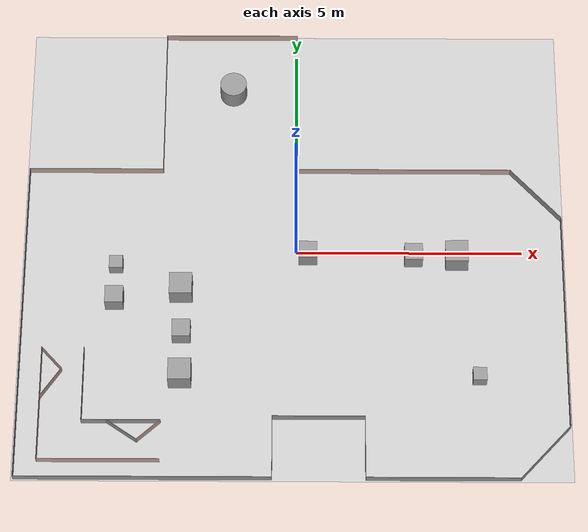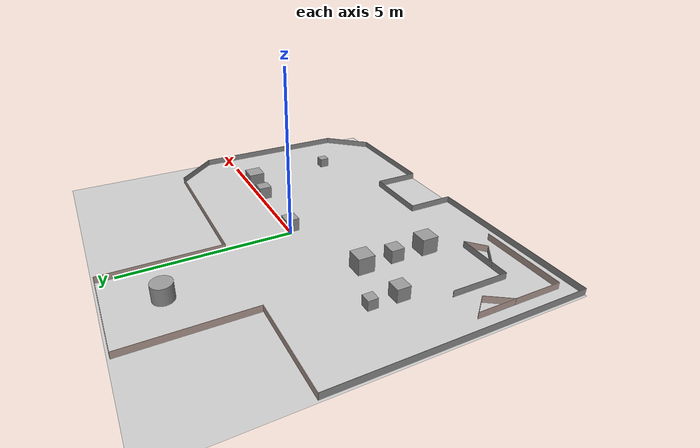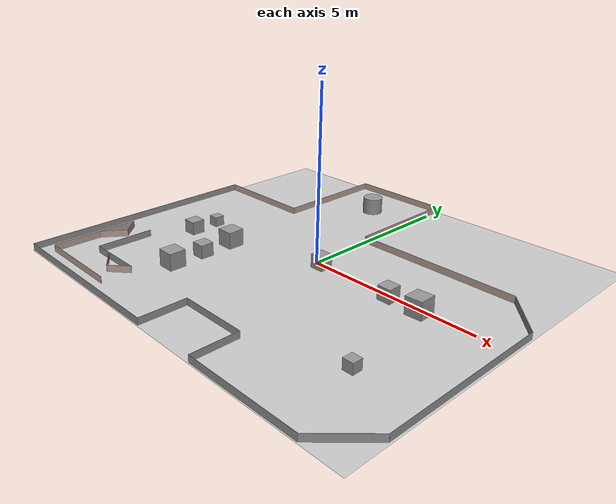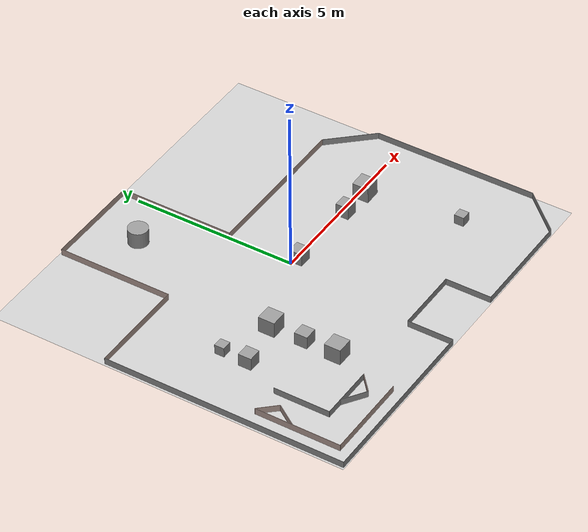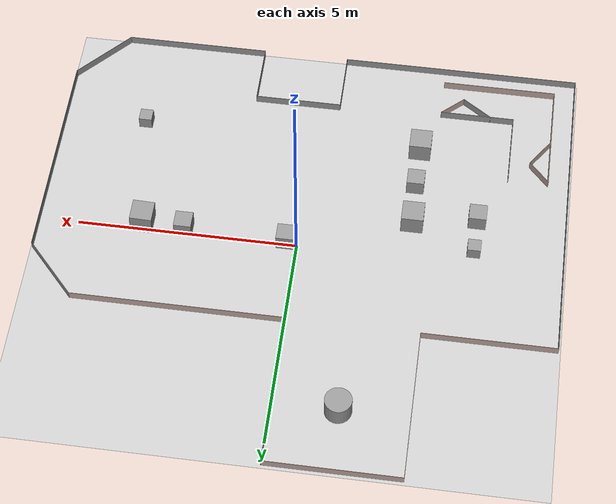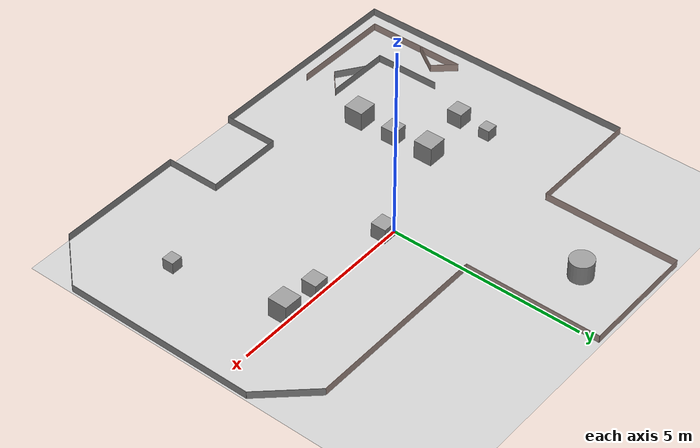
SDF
<sdf version="1.5">
 <world name="default">
  <light name="sun" type="directional">
   <pose>0 0 10 0 -0 0</pose>
   <diffuse>0.8 0.8 0.8 1</diffuse>
   <specular>0.2 0.2 0.2 1</specular>
   <attenuation>
    <range>1000</range>
    <constant>0.9</constant>
    <linear>0.01</linear>
    <quadratic>0.001</quadratic>
   </attenuation>
   <direction>-0.5 0.1 -0.9</direction>
   <spot><inner_angle>0</inner_angle><outer_angle>0</outer_angle><falloff>0</falloff></spot>
  </light>
  <gravity>0 0 -9.8</gravity>
  <magnetic_field>6e-06 2.3e-05 -4.2e-05</magnetic_field>
  <atmosphere type="adiabatic"/>
  <physics type="ode">
   <max_step_size>0.01</max_step_size>
   <real_time_factor>1</real_time_factor>
   <real_time_update_rate>100</real_time_update_rate>
  </physics>
  <scene><ambient>0.4 0.4 0.4 1</ambient><background>0.7 0.7 0.7 1</background><shadows>1</shadows></scene>
  <spherical_coordinates>
   <surface_model>EARTH_WGS84</surface_model>
   <latitude_deg>0</latitude_deg>
   <longitude_deg>0</longitude_deg>
   <elevation>0</elevation>
   <heading_deg>0</heading_deg>
  </spherical_coordinates>
  <model name="KS_Track">
   <static>1</static>
   <link name="link">
    <collision name="collision">
     <geometry><plane><normal>0 0 1</normal><size>12 11</size></plane></geometry>
     <surface><friction><ode><mu>100</mu><mu2>50</mu2></ode></friction></surface>
    </collision>
    <visual name="visual">
     <cast_shadows>0</cast_shadows>
     <geometry><plane><normal>0 0 1</normal><size>12 11</size></plane></geometry>
     <material>
      <script>
       <uri>model://KS_Track_Model/materials/scripts</uri>
       <uri>model://KS_Track_Model/materials/textures/</uri>
       <name>KS_Track/Image</name>
      </script>
     </material>
    </visual>
   </link>
   <pose>-0.055071 0.072909 0 0 -0 0</pose>
  </model>
  <model name="MR_wall">
   <pose>-0.04897 0.04897 0 0 -0 0</pose>
   <link name="Wall_0">
    <collision name="Wall_0_Collision">
     <geometry><box><size>4.81 0.01 0.2</size></box></geometry>
     <pose>0 0 0.1 0 -0 0</pose>
    </collision>
    <visual name="Wall_0_Visual">
     <pose>0 0 0.1 0 -0 0</pose>
     <geometry><box><size>4.81 0.01 0.2</size></box></geometry>
     <material>
      <script><uri>file://media/materials/scripts/gazebo.material</uri><name>Gazebo/Grey</name></script>
      <ambient>0.760784 0.662745 0.627451 1</ambient>
     </material>
     <meta><layer>0</layer></meta>
    </visual>
    <pose>2.44897 1.95103 0 0 -0 0</pose>
   </link>
   <link name="Wall_10">
    <collision name="Wall_10_Collision">
     <geometry><box><size>7.41 0.01 0.2</size></box></geometry>
     <pose>0 0 0.1 0 -0 0</pose>
    </collision>
    <visual name="Wall_10_Visual">
     <pose>0 0 0.1 0 -0 0</pose>
     <geometry><box><size>7.41 0.01 0.2</size></box></geometry>
     <material>
      <script><uri>file://media/materials/scripts/gazebo.material</uri><name>Gazebo/Grey</name></script>
      <ambient>1 1 1 1</ambient>
     </material>
     <meta><layer>0</layer></meta>
    </visual>
    <pose>-5.95103 -1.74897 0 0 -0 -1.5708</pose>
   </link>
   <link name="Wall_12">
    <collision name="Wall_12_Collision">
     <geometry><box><size>5.51 0.01 0.2</size></box></geometry>
     <pose>0 0 0.1 0 -0 0</pose>
    </collision>
    <visual name="Wall_12_Visual">
     <pose>0 0 0.1 0 -0 0</pose>
     <geometry><box><size>5.51 0.01 0.2</size></box></geometry>
     <material>
      <script><uri>file://media/materials/scripts/gazebo.material</uri><name>Gazebo/Grey</name></script>
      <ambient>1 1 1 1</ambient>
     </material>
     <meta><layer>0</layer></meta>
    </visual>
    <pose>-3.20103 -5.44897 0 0 -0 0</pose>
   </link>
   <link name="Wall_13">
    <collision name="Wall_13_Collision">
     <geometry><box><size>1.41 0.01 0.2</size></box></geometry>
     <pose>0 0 0.1 0 -0 0</pose>
    </collision>
    <visual name="Wall_13_Visual">
     <pose>0 0 0.1 0 -0 0</pose>
     <geometry><box><size>1.41 0.01 0.2</size></box></geometry>
     <material>
      <script><uri>file://media/materials/scripts/gazebo.material</uri><name>Gazebo/Grey</name></script>
      <ambient>1 1 1 1</ambient>
     </material>
     <meta><layer>0</layer></meta>
    </visual>
    <pose>-0.451032 -4.74897 0 0 -0 1.5708</pose>
   </link>
   <link name="Wall_14">
    <collision name="Wall_14_Collision">
     <geometry><box><size>2.01 0.01 0.2</size></box></geometry>
     <pose>0 0 0.1 0 -0 0</pose>
    </collision>
    <visual name="Wall_14_Visual">
     <pose>0 0 0.1 0 -0 0</pose>
     <geometry><box><size>2.01 0.01 0.2</size></box></geometry>
     <material>
      <script><uri>file://media/materials/scripts/gazebo.material</uri><name>Gazebo/Grey</name></script>
      <ambient>1 1 1 1</ambient>
     </material>
     <meta><layer>0</layer></meta>
    </visual>
    <pose>0.548968 -4.04897 0 0 -0 0</pose>
   </link>
   <link name="Wall_16">
    <collision name="Wall_16_Collision">
     <geometry><box><size>1.41 0.01 0.2</size></box></geometry>
     <pose>0 0 0.1 0 -0 0</pose>
    </collision>
    <visual name="Wall_16_Visual">
     <pose>0 0 0.1 0 -0 0</pose>
     <geometry><box><size>1.41 0.01 0.2</size></box></geometry>
     <material>
      <script><uri>file://media/materials/scripts/gazebo.material</uri><name>Gazebo/Grey</name></script>
      <ambient>1 1 1 1</ambient>
     </material>
     <meta><layer>0</layer></meta>
    </visual>
    <pose>1.54897 -4.74897 0 0 -0 -1.5708</pose>
   </link>
   <link name="Wall_18">
    <collision name="Wall_18_Collision">
     <geometry><box><size>3.31 0.01 0.2</size></box></geometry>
     <pose>0 0 0.1 0 -0 0</pose>
    </collision>
    <visual name="Wall_18_Visual">
     <pose>0 0 0.1 0 -0 0</pose>
     <geometry><box><size>3.31 0.01 0.2</size></box></geometry>
     <material>
      <script><uri>file://media/materials/scripts/gazebo.material</uri><name>Gazebo/Grey</name></script>
      <ambient>1 1 1 1</ambient>
     </material>
     <meta><layer>0</layer></meta>
    </visual>
    <pose>3.19897 -5.44897 0 0 -0 0</pose>
   </link>
   <link name="Wall_2">
    <collision name="Wall_2_Collision">
     <geometry><box><size>3.51 0.01 0.2</size></box></geometry>
     <pose>0 0 0.1 0 -0 0</pose>
    </collision>
    <visual name="Wall_2_Visual">
     <pose>0 0 0.1 0 -0 0</pose>
     <geometry><box><size>3.51 0.01 0.2</size></box></geometry>
     <material>
      <script><uri>file://media/materials/scripts/gazebo.material</uri><name>Gazebo/Grey</name></script>
      <ambient>0.760784 0.662745 0.627451 1</ambient>
     </material>
     <meta><layer>0</layer></meta>
    </visual>
    <pose>0.048968 3.70103 0 0 -0 1.5708</pose>
   </link>
   <link name="Wall_23">
    <collision name="Wall_23_Collision">
     <geometry><box><size>1.63788 0.01 0.2</size></box></geometry>
     <pose>0 0 0.1 0 -0 0</pose>
    </collision>
    <visual name="Wall_23_Visual">
     <pose>0 0 0.1 0 -0 0</pose>
     <geometry><box><size>1.63788 0.01 0.2</size></box></geometry>
     <material>
      <script><uri>file://media/materials/scripts/gazebo.material</uri><name>Gazebo/Grey</name></script>
      <ambient>1 1 1 1</ambient>
     </material>
     <meta><layer>0</layer></meta>
    </visual>
    <pose>5.39897 1.35103 0 0 -0 -0.828849</pose>
   </link>
   <link name="Wall_25">
    <collision name="Wall_25_Collision">
     <geometry><box><size>1.63788 0.01 0.2</size></box></geometry>
     <pose>0 0 0.1 0 -0 0</pose>
    </collision>
    <visual name="Wall_25_Visual">
     <pose>0 0 0.1 0 -0 0</pose>
     <geometry><box><size>1.63788 0.01 0.2</size></box></geometry>
     <material>
      <script><uri>file://media/materials/scripts/gazebo.material</uri><name>Gazebo/Grey</name></script>
      <ambient>1 1 1 1</ambient>
     </material>
     <meta><layer>0</layer></meta>
    </visual>
    <pose>5.39897 -4.84897 0 0 -0 0.828849</pose>
   </link>
   <link name="Wall_27">
    <collision name="Wall_27_Collision">
     <geometry><box><size>5.01 0.01 0.2</size></box></geometry>
     <pose>0 0 0.1 0 -0 0</pose>
    </collision>
    <visual name="Wall_27_Visual">
     <pose>0 0 0.1 0 -0 0</pose>
     <geometry><box><size>5.01 0.01 0.2</size></box></geometry>
     <material>
      <script><uri>file://media/materials/scripts/gazebo.material</uri><name>Gazebo/Grey</name></script>
      <ambient>1 1 1 1</ambient>
     </material>
     <meta><layer>0</layer></meta>
    </visual>
    <pose>5.94897 -1.74897 0 0 -0 -1.5708</pose>
   </link>
   <link name="Wall_29">
    <collision name="Wall_29_Collision">
     <geometry><box><size>1.71 0.01 0.2</size></box></geometry>
     <pose>0 0 0.1 0 -0 0</pose>
    </collision>
    <visual name="Wall_29_Visual">
     <pose>0 0 0.1 0 -0 0</pose>
     <geometry><box><size>1.71 0.01 0.2</size></box></geometry>
     <material>
      <script><uri>file://media/materials/scripts/gazebo.material</uri><name>Gazebo/Grey</name></script>
      <ambient>1 1 1 1</ambient>
     </material>
     <meta><layer>0</layer></meta>
    </visual>
    <pose>-4.55103 -3.29897 0 0 -0 -1.5708</pose>
   </link>
   <link name="Wall_31">
    <collision name="Wall_31_Collision">
     <geometry><box><size>1.71002 0.01 0.2</size></box></geometry>
     <pose>0 0 0.1 0 -0 0</pose>
    </collision>
    <visual name="Wall_31_Visual">
     <pose>0 0 0.1 0 -0 0</pose>
     <geometry><box><size>1.71002 0.01 0.2</size></box></geometry>
     <material>
      <script><uri>file://media/materials/scripts/gazebo.material</uri><name>Gazebo/Grey</name></script>
      <ambient>1 1 1 1</ambient>
     </material>
     <meta><layer>0</layer></meta>
    </visual>
    <pose>-3.70103 -4.14897 0 0 -0 0</pose>
   </link>
   <link name="Wall_33">
    <collision name="Wall_33_Collision">
     <geometry><box><size>2.61 0.01 0.2</size></box></geometry>
     <pose>0 0 0.1 0 -0 0</pose>
    </collision>
    <visual name="Wall_33_Visual">
     <pose>0 0 0.1 0 -0 0</pose>
     <geometry><box><size>2.61 0.01 0.2</size></box></geometry>
     <material>
      <script><uri>file://media/materials/scripts/gazebo.material</uri><name>Gazebo/Grey</name></script>
      <ambient>0.760784 0.662745 0.627451 1</ambient>
     </material>
     <meta><layer>0</layer></meta>
    </visual>
    <pose>-5.47103 -3.74897 0 0 -0 -1.5708</pose>
   </link>
   <link name="Wall_35">
    <collision name="Wall_35_Collision">
     <geometry><box><size>2.63 0.01 0.2</size></box></geometry>
     <pose>0 0 0.1 0 -0 0</pose>
    </collision>
    <visual name="Wall_35_Visual">
     <pose>0 0 0.1 0 -0 0</pose>
     <geometry><box><size>2.63 0.01 0.2</size></box></geometry>
     <material>
      <script><uri>file://media/materials/scripts/gazebo.material</uri><name>Gazebo/Grey</name></script>
      <ambient>0.760784 0.662745 0.627451 1</ambient>
     </material>
     <meta><layer>0</layer></meta>
    </visual>
    <pose>-4.16103 -5.04897 0 0 -0 3.14159</pose>
   </link>
   <link name="Wall_37">
    <collision name="Wall_37_Collision">
     <geometry><box><size>0.682681 0.01 0.2</size></box></geometry>
     <pose>0 0 0.1 0 -0 0</pose>
    </collision>
    <visual name="Wall_37_Visual">
     <pose>0 0 0.1 0 -0 0</pose>
     <geometry><box><size>0.682681 0.01 0.2</size></box></geometry>
     <material>
      <script><uri>file://media/materials/scripts/gazebo.material</uri><name>Gazebo/Grey</name></script>
      <ambient>0.760784 0.662745 0.627451 1</ambient>
     </material>
     <meta><layer>0</layer></meta>
    </visual>
    <pose>-3.10103 -4.37397 0 0 -0 -2.40878</pose>
   </link>
   <link name="Wall_38">
    <collision name="Wall_38_Collision">
     <geometry><box><size>0.809375 0.01 0.2</size></box></geometry>
     <pose>0 0 0.1 0 -0 0</pose>
    </collision>
    <visual name="Wall_38_Visual">
     <pose>0 0 0.1 0 -0 0</pose>
     <geometry><box><size>0.809375 0.01 0.2</size></box></geometry>
     <material>
      <script><uri>file://media/materials/scripts/gazebo.material</uri><name>Gazebo/Grey</name></script>
      <ambient>1 1 1 1</ambient>
     </material>
     <meta><layer>0</layer></meta>
    </visual>
    <pose>-3.68103 -4.37347 0 0 -0 2.54214</pose>
   </link>
   <link name="Wall_4">
    <collision name="Wall_4_Collision">
     <geometry><box><size>3.01 0.01 0.2</size></box></geometry>
     <pose>0 0 0.1 0 -0 0</pose>
    </collision>
    <visual name="Wall_4_Visual">
     <pose>0 0 0.1 0 -0 0</pose>
     <geometry><box><size>3.01 0.01 0.2</size></box></geometry>
     <material>
      <script><uri>file://media/materials/scripts/gazebo.material</uri><name>Gazebo/Grey</name></script>
      <ambient>0.760784 0.662745 0.627451 1</ambient>
     </material>
     <meta><layer>0</layer></meta>
    </visual>
    <pose>-1.45103 5.45103 0 0 -0 3.14159</pose>
   </link>
   <link name="Wall_40">
    <collision name="Wall_40_Collision">
     <geometry><box><size>0.678174 0.01 0.2</size></box></geometry>
     <pose>0 0 0.1 0 -0 0</pose>
    </collision>
    <visual name="Wall_40_Visual">
     <pose>0 0 0.1 0 -0 0</pose>
     <geometry><box><size>0.678174 0.01 0.2</size></box></geometry>
     <material>
      <script><uri>file://media/materials/scripts/gazebo.material</uri><name>Gazebo/Grey</name></script>
      <ambient>0.760784 0.662745 0.627451 1</ambient>
     </material>
     <meta><layer>0</layer></meta>
    </visual>
    <pose>-5.24603 -2.69593 0 0 -0 -0.831893</pose>
   </link>
   <link name="Wall_41">
    <collision name="Wall_41_Collision">
     <geometry><box><size>0.809375 0.01 0.2</size></box></geometry>
     <pose>0 0 0.1 0 -0 0</pose>
    </collision>
    <visual name="Wall_41_Visual">
     <pose>0 0 0.1 0 -0 0</pose>
     <geometry><box><size>0.809375 0.01 0.2</size></box></geometry>
     <material>
      <script><uri>file://media/materials/scripts/gazebo.material</uri><name>Gazebo/Grey</name></script>
      <ambient>0.760784 0.662745 0.627451 1</ambient>
     </material>
     <meta><layer>0</layer></meta>
    </visual>
    <pose>-5.24653 -3.27593 0 0 -0 -2.17025</pose>
   </link>
   <link name="Wall_6">
    <collision name="Wall_6_Collision">
     <geometry><box><size>3.51 0.01 0.2</size></box></geometry>
     <pose>0 0 0.1 0 -0 0</pose>
    </collision>
    <visual name="Wall_6_Visual">
     <pose>0 0 0.1 0 -0 0</pose>
     <geometry><box><size>3.51 0.01 0.2</size></box></geometry>
     <material>
      <script><uri>file://media/materials/scripts/gazebo.material</uri><name>Gazebo/Grey</name></script>
      <ambient>0.760784 0.662745 0.627451 1</ambient>
     </material>
     <meta><layer>0</layer></meta>
    </visual>
    <pose>-2.95103 3.70103 0 0 -0 -1.5708</pose>
   </link>
   <link name="Wall_8">
    <collision name="Wall_8_Collision">
     <geometry><box><size>3.01 0.01 0.2</size></box></geometry>
     <pose>0 0 0.1 0 -0 0</pose>
    </collision>
    <visual name="Wall_8_Visual">
     <pose>0 0 0.1 0 -0 0</pose>
     <geometry><box><size>3.01 0.01 0.2</size></box></geometry>
     <material>
      <script><uri>file://media/materials/scripts/gazebo.material</uri><name>Gazebo/Grey</name></script>
      <ambient>0.760784 0.662745 0.627451 1</ambient>
     </material>
     <meta><layer>0</layer></meta>
    </visual>
    <pose>-4.45103 1.95103 0 0 -0 3.14159</pose>
   </link>
   <static>1</static>
  </model>
  <model name="box_5_0">
   <link name="link">
    <inertial>
     <mass>1</mass>
     <inertia>
      <ixx>0.166667</ixx>
      <ixy>0</ixy>
      <ixz>0</ixz>
      <iyy>0.166667</iyy>
      <iyz>0</iyz>
      <izz>0.166667</izz>
     </inertia>
    </inertial>
    <visual name="visual">
     <geometry><box><size>0.5 0.5 0.5</size></box></geometry>
     <material>
      <script><name>Gazebo/Grey</name><uri>file://media/materials/scripts/gazebo.material</uri></script>
      <shader type="pixel"><normal_map>__default__</normal_map></shader>
      <ambient>0.3 0.3 0.3 1</ambient>
      <diffuse>0.7 0.7 0.7 1</diffuse>
      <specular>0.01 0.01 0.01 1</specular>
      <emissive>0 0 0 1</emissive>
     </material>
    </visual>
    <collision name="collision">
     <geometry><box><size>0.5 0.5 0.5</size></box></geometry>
     <surface>
      <friction>
       <ode><mu>1</mu><mu2>1</mu2><fdir1>0 0 0</fdir1><slip1>0</slip1><slip2>0</slip2></ode>
       <torsional>
        <coefficient>1</coefficient>
        <patch_radius>0</patch_radius>
        <surface_radius>0</surface_radius>
        <use_patch_radius>1</use_patch_radius>
        <ode><slip>0</slip></ode>
       </torsional>
      </friction>
      <bounce><restitution_coefficient>0</restitution_coefficient><threshold>1e+06</threshold></bounce>
      <contact>
       <collide_without_contact>0</collide_without_contact>
       <collide_without_contact_bitmask>1</collide_without_contact_bitmask>
       <collide_bitmask>1</collide_bitmask>
       <ode>
        <soft_cfm>0</soft_cfm>
        <soft_erp>0.2</soft_erp>
        <kp>1e+13</kp>
        <kd>1</kd>
        <max_vel>0.01</max_vel>
        <min_depth>0</min_depth>
       </ode>
       <bullet>
        <split_impulse>1</split_impulse>
        <split_impulse_penetration_threshold>-0.01</split_impulse_penetration_threshold>
        <soft_cfm>0</soft_cfm>
        <soft_erp>0.2</soft_erp>
        <kp>1e+13</kp>
        <kd>1</kd>
       </bullet>
      </contact>
     </surface>
    </collision>
   </link>
   <static>0</static>
   <pose>3.54501 -0.181841 0.260401 0 -0.042522 -4e-06</pose>
  </model>
  <model name="unit_4_1">
   <link name="link">
    <inertial>
     <mass>1</mass>
     <inertia>
      <ixx>0.166667</ixx>
      <ixy>0</ixy>
      <ixz>0</ixz>
      <iyy>0.166667</iyy>
      <iyz>0</iyz>
      <izz>0.166667</izz>
     </inertia>
    </inertial>
    <visual name="visual">
     <geometry><box><size>0.4 0.4 0.4</size></box></geometry>
     <material>
      <script><name>Gazebo/Grey</name><uri>file://media/materials/scripts/gazebo.material</uri></script>
      <shader type="pixel"><normal_map>__default__</normal_map></shader>
      <ambient>0.3 0.3 0.3 1</ambient>
      <diffuse>0.7 0.7 0.7 1</diffuse>
      <specular>0.01 0.01 0.01 1</specular>
      <emissive>0 0 0 1</emissive>
     </material>
    </visual>
    <collision name="collision">
     <geometry><box><size>0.4 0.4 0.4</size></box></geometry>
     <surface>
      <friction>
       <ode><mu>1</mu><mu2>1</mu2><fdir1>0 0 0</fdir1><slip1>0</slip1><slip2>0</slip2></ode>
       <torsional>
        <coefficient>1</coefficient>
        <patch_radius>0</patch_radius>
        <surface_radius>0</surface_radius>
        <use_patch_radius>1</use_patch_radius>
        <ode><slip>0</slip></ode>
       </torsional>
      </friction>
      <bounce><restitution_coefficient>0</restitution_coefficient><threshold>1e+06</threshold></bounce>
      <contact>
       <collide_without_contact>0</collide_without_contact>
       <collide_without_contact_bitmask>1</collide_without_contact_bitmask>
       <collide_bitmask>1</collide_bitmask>
       <ode>
        <soft_cfm>0</soft_cfm>
        <soft_erp>0.2</soft_erp>
        <kp>1e+13</kp>
        <kd>1</kd>
        <max_vel>0.01</max_vel>
        <min_depth>0</min_depth>
       </ode>
       <bullet>
        <split_impulse>1</split_impulse>
        <split_impulse_penetration_threshold>-0.01</split_impulse_penetration_threshold>
        <soft_cfm>0</soft_cfm>
        <soft_erp>0.2</soft_erp>
        <kp>1e+13</kp>
        <kd>1</kd>
       </bullet>
      </contact>
     </surface>
    </collision>
   </link>
   <static>0</static>
   <pose>2.595 -0.145 0.2 0 -0 0</pose>
  </model>
  <model name="unit_4">
   <link name="link">
    <inertial>
     <mass>1</mass>
     <inertia>
      <ixx>0.166667</ixx>
      <ixy>0</ixy>
      <ixz>0</ixz>
      <iyy>0.166667</iyy>
      <iyz>0</iyz>
      <izz>0.166667</izz>
     </inertia>
    </inertial>
    <visual name="visual">
     <geometry><box><size>0.4 0.4 0.4</size></box></geometry>
     <material>
      <script><name>Gazebo/Grey</name><uri>file://media/materials/scripts/gazebo.material</uri></script>
      <shader type="pixel"><normal_map>__default__</normal_map></shader>
      <ambient>0.3 0.3 0.3 1</ambient>
      <diffuse>0.7 0.7 0.7 1</diffuse>
      <specular>0.01 0.01 0.01 1</specular>
      <emissive>0 0 0 1</emissive>
     </material>
    </visual>
    <collision name="collision">
     <geometry><box><size>0.4 0.4 0.4</size></box></geometry>
     <surface>
      <friction>
       <ode><mu>1</mu><mu2>1</mu2><fdir1>0 0 0</fdir1><slip1>0</slip1><slip2>0</slip2></ode>
       <torsional>
        <coefficient>1</coefficient>
        <patch_radius>0</patch_radius>
        <surface_radius>0</surface_radius>
        <use_patch_radius>1</use_patch_radius>
        <ode><slip>0</slip></ode>
       </torsional>
      </friction>
      <bounce><restitution_coefficient>0</restitution_coefficient><threshold>1e+06</threshold></bounce>
      <contact>
       <collide_without_contact>0</collide_without_contact>
       <collide_without_contact_bitmask>1</collide_without_contact_bitmask>
       <collide_bitmask>1</collide_bitmask>
       <ode>
        <soft_cfm>0</soft_cfm>
        <soft_erp>0.2</soft_erp>
        <kp>1e+13</kp>
        <kd>1</kd>
        <max_vel>0.01</max_vel>
        <min_depth>0</min_depth>
       </ode>
       <bullet>
        <split_impulse>1</split_impulse>
        <split_impulse_penetration_threshold>-0.01</split_impulse_penetration_threshold>
        <soft_cfm>0</soft_cfm>
        <soft_erp>0.2</soft_erp>
        <kp>1e+13</kp>
        <kd>1</kd>
       </bullet>
      </contact>
     </surface>
    </collision>
   </link>
   <static>0</static>
   <pose>0.260538 -0.10507 0.2 0 -0 0</pose>
  </model>
  <model name="box_3">
   <link name="link">
    <inertial>
     <mass>1</mass>
     <inertia>
      <ixx>0.166667</ixx>
      <ixy>0</ixy>
      <ixz>0</ixz>
      <iyy>0.166667</iyy>
      <iyz>0</iyz>
      <izz>0.166667</izz>
     </inertia>
    </inertial>
    <visual name="visual">
     <geometry><box><size>0.3 0.3 0.3</size></box></geometry>
     <material>
      <script><name>Gazebo/Grey</name><uri>file://media/materials/scripts/gazebo.material</uri></script>
      <shader type="pixel"><normal_map>__default__</normal_map></shader>
      <ambient>0.3 0.3 0.3 1</ambient>
      <diffuse>0.7 0.7 0.7 1</diffuse>
      <specular>0.01 0.01 0.01 1</specular>
      <emissive>0 0 0 1</emissive>
     </material>
    </visual>
    <collision name="collision">
     <geometry><box><size>0.3 0.3 0.3</size></box></geometry>
     <surface>
      <friction>
       <ode><mu>1</mu><mu2>1</mu2><fdir1>0 0 0</fdir1><slip1>0</slip1><slip2>0</slip2></ode>
       <torsional>
        <coefficient>1</coefficient>
        <patch_radius>0</patch_radius>
        <surface_radius>0</surface_radius>
        <use_patch_radius>1</use_patch_radius>
        <ode><slip>0</slip></ode>
       </torsional>
      </friction>
      <bounce><restitution_coefficient>0</restitution_coefficient><threshold>1e+06</threshold></bounce>
      <contact>
       <collide_without_contact>0</collide_without_contact>
       <collide_without_contact_bitmask>1</collide_without_contact_bitmask>
       <collide_bitmask>1</collide_bitmask>
       <ode>
        <soft_cfm>0</soft_cfm>
        <soft_erp>0.2</soft_erp>
        <kp>1e+13</kp>
        <kd>1</kd>
        <max_vel>0.01</max_vel>
        <min_depth>0</min_depth>
       </ode>
       <bullet>
        <split_impulse>1</split_impulse>
        <split_impulse_penetration_threshold>-0.01</split_impulse_penetration_threshold>
        <soft_cfm>0</soft_cfm>
        <soft_erp>0.2</soft_erp>
        <kp>1e+13</kp>
        <kd>1</kd>
       </bullet>
      </contact>
     </surface>
    </collision>
   </link>
   <static>0</static>
   <pose>-3.97489 -0.374778 0.15 0 -0 0</pose>
  </model>
  <model name="unit_4_0">
   <link name="link">
    <inertial>
     <mass>1</mass>
     <inertia>
      <ixx>0.166667</ixx>
      <ixy>0</ixy>
      <ixz>0</ixz>
      <iyy>0.166667</iyy>
      <iyz>0</iyz>
      <izz>0.166667</izz>
     </inertia>
    </inertial>
    <visual name="visual">
     <geometry><box><size>0.4 0.4 0.4</size></box></geometry>
     <material>
      <script><name>Gazebo/Grey</name><uri>file://media/materials/scripts/gazebo.material</uri></script>
      <shader type="pixel"><normal_map>__default__</normal_map></shader>
      <ambient>0.3 0.3 0.3 1</ambient>
      <diffuse>0.7 0.7 0.7 1</diffuse>
      <specular>0.01 0.01 0.01 1</specular>
      <emissive>0 0 0 1</emissive>
     </material>
    </visual>
    <collision name="collision">
     <geometry><box><size>0.4 0.4 0.4</size></box></geometry>
     <surface>
      <friction>
       <ode><mu>1</mu><mu2>1</mu2><fdir1>0 0 0</fdir1><slip1>0</slip1><slip2>0</slip2></ode>
       <torsional>
        <coefficient>1</coefficient>
        <patch_radius>0</patch_radius>
        <surface_radius>0</surface_radius>
        <use_patch_radius>1</use_patch_radius>
        <ode><slip>0</slip></ode>
       </torsional>
      </friction>
      <bounce><restitution_coefficient>0</restitution_coefficient><threshold>1e+06</threshold></bounce>
      <contact>
       <collide_without_contact>0</collide_without_contact>
       <collide_without_contact_bitmask>1</collide_without_contact_bitmask>
       <collide_bitmask>1</collide_bitmask>
       <ode>
        <soft_cfm>0</soft_cfm>
        <soft_erp>0.2</soft_erp>
        <kp>1e+13</kp>
        <kd>1</kd>
        <max_vel>0.01</max_vel>
        <min_depth>0</min_depth>
       </ode>
       <bullet>
        <split_impulse>1</split_impulse>
        <split_impulse_penetration_threshold>-0.01</split_impulse_penetration_threshold>
        <soft_cfm>0</soft_cfm>
        <soft_erp>0.2</soft_erp>
        <kp>1e+13</kp>
        <kd>1</kd>
       </bullet>
      </contact>
     </surface>
    </collision>
   </link>
   <static>0</static>
   <pose>-3.98488 -1.21387 0.2 0 -0 0</pose>
  </model>
  <model name="box_5_1">
   <link name="link">
    <inertial>
     <mass>1</mass>
     <inertia>
      <ixx>0.166667</ixx>
      <ixy>0</ixy>
      <ixz>0</ixz>
      <iyy>0.166667</iyy>
      <iyz>0</iyz>
      <izz>0.166667</izz>
     </inertia>
    </inertial>
    <visual name="visual">
     <geometry><box><size>0.5 0.5 0.5</size></box></geometry>
     <material>
      <script><name>Gazebo/Grey</name><uri>file://media/materials/scripts/gazebo.material</uri></script>
      <shader type="pixel"><normal_map>__default__</normal_map></shader>
      <ambient>0.3 0.3 0.3 1</ambient>
      <diffuse>0.7 0.7 0.7 1</diffuse>
      <specular>0.01 0.01 0.01 1</specular>
      <emissive>0 0 0 1</emissive>
     </material>
    </visual>
    <collision name="collision">
     <geometry><box><size>0.5 0.5 0.5</size></box></geometry>
     <surface>
      <friction>
       <ode><mu>1</mu><mu2>1</mu2><fdir1>0 0 0</fdir1><slip1>0</slip1><slip2>0</slip2></ode>
       <torsional>
        <coefficient>1</coefficient>
        <patch_radius>0</patch_radius>
        <surface_radius>0</surface_radius>
        <use_patch_radius>1</use_patch_radius>
        <ode><slip>0</slip></ode>
       </torsional>
      </friction>
      <bounce><restitution_coefficient>0</restitution_coefficient><threshold>1e+06</threshold></bounce>
      <contact>
       <collide_without_contact>0</collide_without_contact>
       <collide_without_contact_bitmask>1</collide_without_contact_bitmask>
       <collide_bitmask>1</collide_bitmask>
       <ode>
        <soft_cfm>0</soft_cfm>
        <soft_erp>0.2</soft_erp>
        <kp>1e+13</kp>
        <kd>1</kd>
        <max_vel>0.01</max_vel>
        <min_depth>0</min_depth>
       </ode>
       <bullet>
        <split_impulse>1</split_impulse>
        <split_impulse_penetration_threshold>-0.01</split_impulse_penetration_threshold>
        <soft_cfm>0</soft_cfm>
        <soft_erp>0.2</soft_erp>
        <kp>1e+13</kp>
        <kd>1</kd>
       </bullet>
      </contact>
     </surface>
    </collision>
   </link>
   <static>0</static>
   <pose>-2.50648 -3.03191 0.25 0 -0 0</pose>
  </model>
  <model name="unit_4_2">
   <link name="link">
    <inertial>
     <mass>1</mass>
     <inertia>
      <ixx>0.166667</ixx>
      <ixy>0</ixy>
      <ixz>0</ixz>
      <iyy>0.166667</iyy>
      <iyz>0</iyz>
      <izz>0.166667</izz>
     </inertia>
    </inertial>
    <visual name="visual">
     <geometry><box><size>0.4 0.4 0.4</size></box></geometry>
     <material>
      <script><name>Gazebo/Grey</name><uri>file://media/materials/scripts/gazebo.material</uri></script>
      <shader type="pixel"><normal_map>__default__</normal_map></shader>
      <ambient>0.3 0.3 0.3 1</ambient>
      <diffuse>0.7 0.7 0.7 1</diffuse>
      <specular>0.01 0.01 0.01 1</specular>
      <emissive>0 0 0 1</emissive>
     </material>
    </visual>
    <collision name="collision">
     <geometry><box><size>0.4 0.4 0.4</size></box></geometry>
     <surface>
      <friction>
       <ode><mu>1</mu><mu2>1</mu2><fdir1>0 0 0</fdir1><slip1>0</slip1><slip2>0</slip2></ode>
       <torsional>
        <coefficient>1</coefficient>
        <patch_radius>0</patch_radius>
        <surface_radius>0</surface_radius>
        <use_patch_radius>1</use_patch_radius>
        <ode><slip>0</slip></ode>
       </torsional>
      </friction>
      <bounce><restitution_coefficient>0</restitution_coefficient><threshold>1e+06</threshold></bounce>
      <contact>
       <collide_without_contact>0</collide_without_contact>
       <collide_without_contact_bitmask>1</collide_without_contact_bitmask>
       <collide_bitmask>1</collide_bitmask>
       <ode>
        <soft_cfm>0</soft_cfm>
        <soft_erp>0.2</soft_erp>
        <kp>1e+13</kp>
        <kd>1</kd>
        <max_vel>0.01</max_vel>
        <min_depth>0</min_depth>
       </ode>
       <bullet>
        <split_impulse>1</split_impulse>
        <split_impulse_penetration_threshold>-0.01</split_impulse_penetration_threshold>
        <soft_cfm>0</soft_cfm>
        <soft_erp>0.2</soft_erp>
        <kp>1e+13</kp>
        <kd>1</kd>
       </bullet>
      </contact>
     </surface>
    </collision>
   </link>
   <static>0</static>
   <pose>-2.49649 -2.01301 0.2 0 -0 0</pose>
  </model>
  <model name="box_5_2">
   <link name="link">
    <inertial>
     <mass>1</mass>
     <inertia>
      <ixx>0.166667</ixx>
      <ixy>0</ixy>
      <ixz>0</ixz>
      <iyy>0.166667</iyy>
      <iyz>0</iyz>
      <izz>0.166667</izz>
     </inertia>
    </inertial>
    <visual name="visual">
     <geometry><box><size>0.5 0.5 0.5</size></box></geometry>
     <material>
      <script><name>Gazebo/Grey</name><uri>file://media/materials/scripts/gazebo.material</uri></script>
      <shader type="pixel"><normal_map>__default__</normal_map></shader>
      <ambient>0.3 0.3 0.3 1</ambient>
      <diffuse>0.7 0.7 0.7 1</diffuse>
      <specular>0.01 0.01 0.01 1</specular>
      <emissive>0 0 0 1</emissive>
     </material>
    </visual>
    <collision name="collision">
     <geometry><box><size>0.5 0.5 0.5</size></box></geometry>
     <surface>
      <friction>
       <ode><mu>1</mu><mu2>1</mu2><fdir1>0 0 0</fdir1><slip1>0</slip1><slip2>0</slip2></ode>
       <torsional>
        <coefficient>1</coefficient>
        <patch_radius>0</patch_radius>
        <surface_radius>0</surface_radius>
        <use_patch_radius>1</use_patch_radius>
        <ode><slip>0</slip></ode>
       </torsional>
      </friction>
      <bounce><restitution_coefficient>0</restitution_coefficient><threshold>1e+06</threshold></bounce>
      <contact>
       <collide_without_contact>0</collide_without_contact>
       <collide_without_contact_bitmask>1</collide_without_contact_bitmask>
       <collide_bitmask>1</collide_bitmask>
       <ode>
        <soft_cfm>0</soft_cfm>
        <soft_erp>0.2</soft_erp>
        <kp>1e+13</kp>
        <kd>1</kd>
        <max_vel>0.01</max_vel>
        <min_depth>0</min_depth>
       </ode>
       <bullet>
        <split_impulse>1</split_impulse>
        <split_impulse_penetration_threshold>-0.01</split_impulse_penetration_threshold>
        <soft_cfm>0</soft_cfm>
        <soft_erp>0.2</soft_erp>
        <kp>1e+13</kp>
        <kd>1</kd>
       </bullet>
      </contact>
     </surface>
    </collision>
   </link>
   <static>0</static>
   <pose>-2.52645 -0.98412 0.25 0 -0 0</pose>
  </model>
  <model name="cylinder1">
   <link name="link">
    <inertial>
     <mass>1</mass>
     <inertia><ixx>0.145833</ixx><ixy>0</ixy><ixz>0</ixz><iyy>0.145833</iyy><iyz>0</iyz><izz>0.125</izz></inertia>
    </inertial>
    <visual name="visual">
     <geometry><cylinder><radius>0.3</radius><length>0.5</length></cylinder></geometry>
     <material>
      <script><name>Gazebo/Grey</name><uri>file://media/materials/scripts/gazebo.material</uri></script>
      <shader type="pixel"><normal_map>__default__</normal_map></shader>
      <ambient>0.3 0.3 0.3 1</ambient>
      <diffuse>0.7 0.7 0.7 1</diffuse>
      <specular>0.01 0.01 0.01 1</specular>
      <emissive>0 0 0 1</emissive>
     </material>
    </visual>
    <collision name="collision">
     <geometry><cylinder><radius>0.3</radius><length>0.5</length></cylinder></geometry>
     <surface>
      <friction>
       <ode><mu>1</mu><mu2>1</mu2><fdir1>0 0 0</fdir1><slip1>0</slip1><slip2>0</slip2></ode>
       <torsional>
        <coefficient>1</coefficient>
        <patch_radius>0</patch_radius>
        <surface_radius>0</surface_radius>
        <use_patch_radius>1</use_patch_radius>
        <ode><slip>0</slip></ode>
       </torsional>
      </friction>
      <bounce><restitution_coefficient>0</restitution_coefficient><threshold>1e+06</threshold></bounce>
      <contact>
       <collide_without_contact>0</collide_without_contact>
       <collide_without_contact_bitmask>1</collide_without_contact_bitmask>
       <collide_bitmask>1</collide_bitmask>
       <ode>
        <soft_cfm>0</soft_cfm>
        <soft_erp>0.2</soft_erp>
        <kp>1e+13</kp>
        <kd>1</kd>
        <max_vel>0.01</max_vel>
        <min_depth>0</min_depth>
       </ode>
       <bullet>
        <split_impulse>1</split_impulse>
        <split_impulse_penetration_threshold>-0.01</split_impulse_penetration_threshold>
        <soft_cfm>0</soft_cfm>
        <soft_erp>0.2</soft_erp>
        <kp>1e+13</kp>
        <kd>1</kd>
       </bullet>
      </contact>
     </surface>
    </collision>
   </link>
   <static>0</static>
   <pose>-1.44323 4.03428 0.249993 -2e-06 -2e-06 0</pose>
  </model>
  <model name="box_3_0">
   <link name="link">
    <inertial>
     <mass>1</mass>
     <inertia>
      <ixx>0.166667</ixx>
      <ixy>0</ixy>
      <ixz>0</ixz>
      <iyy>0.166667</iyy>
      <iyz>0</iyz>
      <izz>0.166667</izz>
     </inertia>
    </inertial>
    <visual name="visual">
     <geometry><box><size>0.3 0.3 0.3</size></box></geometry>
     <material>
      <script><name>Gazebo/Grey</name><uri>file://media/materials/scripts/gazebo.material</uri></script>
      <shader type="pixel"><normal_map>__default__</normal_map></shader>
      <ambient>0.3 0.3 0.3 1</ambient>
      <diffuse>0.7 0.7 0.7 1</diffuse>
      <specular>0.01 0.01 0.01 1</specular>
      <emissive>0 0 0 1</emissive>
     </material>
    </visual>
    <collision name="collision">
     <geometry><box><size>0.3 0.3 0.3</size></box></geometry>
     <surface>
      <friction>
       <ode><mu>1</mu><mu2>1</mu2><fdir1>0 0 0</fdir1><slip1>0</slip1><slip2>0</slip2></ode>
       <torsional>
        <coefficient>1</coefficient>
        <patch_radius>0</patch_radius>
        <surface_radius>0</surface_radius>
        <use_patch_radius>1</use_patch_radius>
        <ode><slip>0</slip></ode>
       </torsional>
      </friction>
      <bounce><restitution_coefficient>0</restitution_coefficient><threshold>1e+06</threshold></bounce>
      <contact>
       <collide_without_contact>0</collide_without_contact>
       <collide_without_contact_bitmask>1</collide_without_contact_bitmask>
       <collide_bitmask>1</collide_bitmask>
       <ode>
        <soft_cfm>0</soft_cfm>
        <soft_erp>0.2</soft_erp>
        <kp>1e+13</kp>
        <kd>1</kd>
        <max_vel>0.01</max_vel>
        <min_depth>0</min_depth>
       </ode>
       <bullet>
        <split_impulse>1</split_impulse>
        <split_impulse_penetration_threshold>-0.01</split_impulse_penetration_threshold>
        <soft_cfm>0</soft_cfm>
        <soft_erp>0.2</soft_erp>
        <kp>1e+13</kp>
        <kd>1</kd>
       </bullet>
      </contact>
     </surface>
    </collision>
   </link>
   <static>0</static>
   <pose>3.985 -3.035 0.15 0 -0 0</pose>
  </model>
 </world>
</sdf>
